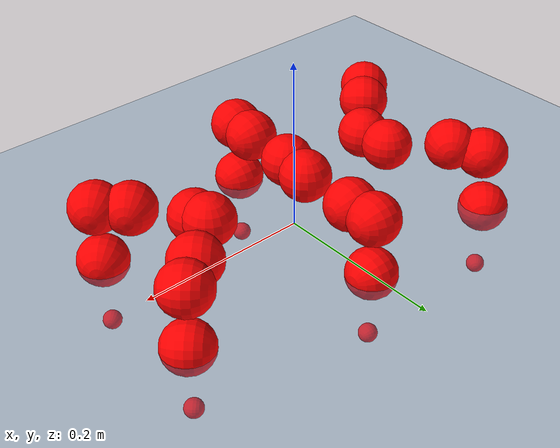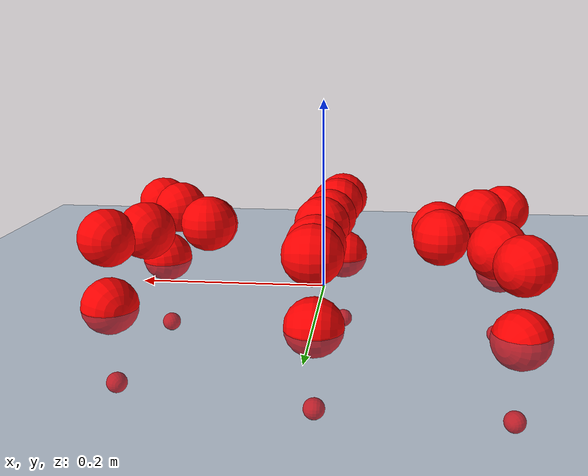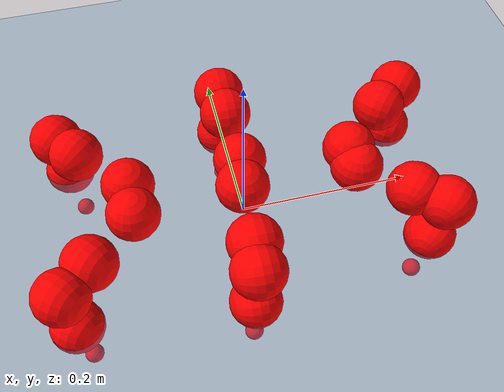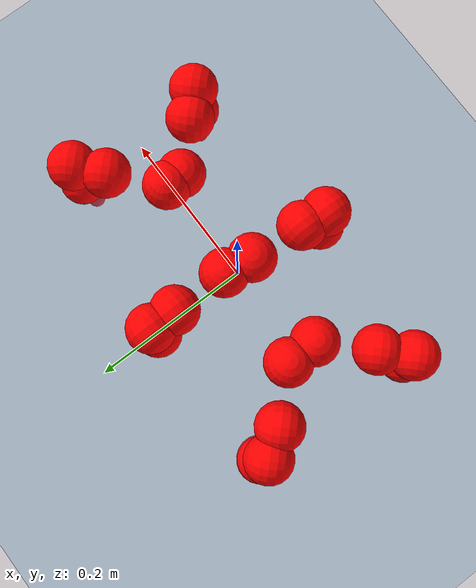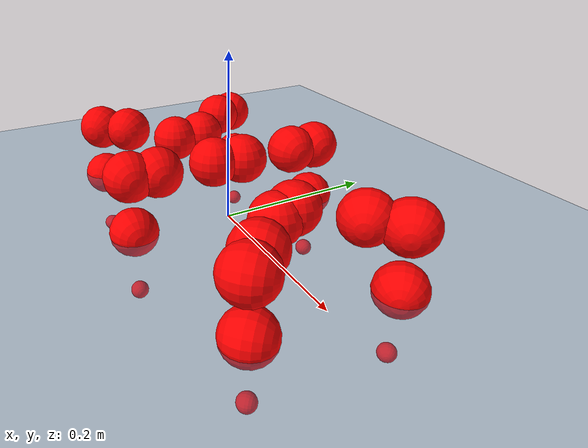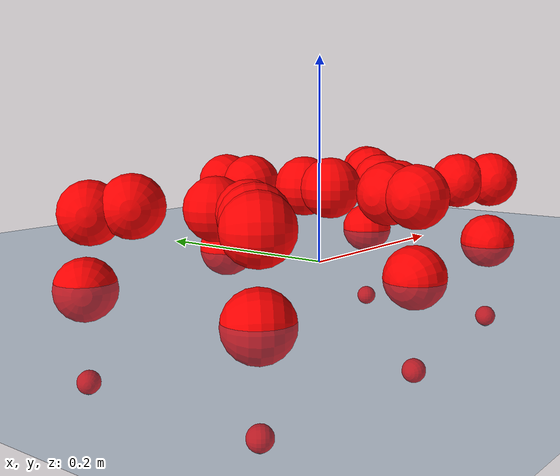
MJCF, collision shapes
<mujoco model="Golem">
  <compiler angle="radian" assetdir="assets" balanceinertia="true" inertiafromgeom="false"/>

  <option timestep="0.005" density="1.2" viscosity="2e-05"/>

  <size nkey="1"/>

  <visual>
    <quality shadowsize="8192"/>
    <map shadowclip="0.5"/>
  </visual>

  <default>
    <default class="/">
      <joint armature="0.01" damping="0.01" frictionloss="0.01"/>
      <geom contype="0" conaffinity="0" group="1" solref="-1000 -80"/>
      <site size="0.01 0.005 0.005" group="5"/>
      <general forcelimited="true" biastype="affine" gainprm="25" biasprm="0 -25 -0.5"/>
      <default class="visual">
        <geom type="mesh" group="2"/>
      </default>
      <default class="collision">
        <geom group="3"/>
      </default>
      <default class="foot">
        <geom size="0.01 0 0" condim="6" group="4" priority="1" solimp="0.015 1 0.01"/>
      </default>
      <default class="reward_collision_sphere">
        <geom group="5" rgba="1 0 0 1"/>
      </default>
    </default>
  </default>

  <asset>
    <texture type="skybox" colorspace="auto" name="//unnamed_texture_0" builtin="gradient" rgb1="0.95 0.95 0.95" rgb2="0.95 0.95 0.95" width="100" height="600"/>
    <texture type="2d" colorspace="auto" name="texplane" builtin="checker" rgb1="0.345 0.575 0.748" rgb2="0.345 0.575 0.748" markrgb="1 1 1" width="512" height="512"/>
    <material name="MatPlane" class="/" texture="texplane" texuniform="true" texrepeat="2 2" specular="0.9"/>
    <mesh name="body" class="/" file="body.stl" scale="0.001 0.001 0.001"/>
    <mesh name="coxa" class="/" file="coxa.stl" scale="0.001 0.001 0.001"/>
    <mesh name="femur" class="/" file="femur.stl" scale="0.001 0.001 0.001"/>
    <mesh name="tibia" class="/" file="tibia.stl" scale="0.001 0.001 0.001"/>
    <mesh name="tarsus" class="/" file="tarsus.stl" scale="0.001 0.001 0.001"/>
  </asset>

  <worldbody>
    <geom name="floor" class="/" size="100 100 0.125" type="plane" group="0" material="MatPlane"/>
    <light name="toplight_shadow" class="/" pos="0 0 5" dir="0.0990148 0.0990148 -0.990148" type="directional" ambient="0.04 0.04 0.04" diffuse="0.55 0.55 0.55" specular="0.12 0.12 0.12"/>
    <light name="toplight_fill" class="/" pos="0 0 5" dir="0.0990148 0.0990148 -0.990148" type="directional" castshadow="false" ambient="0.04 0.04 0.04" diffuse="0.3 0.3 0.3" specular="0.08 0.08 0.08"/>
    <body name="trunk" pos="-0.000641682 0.000573732 0.00263501" quat="0.999998 -0.00168083 0.0011606 8.3818e-05">
      <inertial pos="0.00310886 -0.000741004 -0.0034684" quat="0.999998 -0.00024107 0.00217954 -0.00034717" mass="1.37392" diaginertia="0.00319268 5.26254e-05 0.012687"/>
      <joint name="//unnamed_joint_0" type="free"/>
      <geom name="//unnamed_geom_1" class="/" pos="0 0 0.0665328" quat="1 0 0 0" type="mesh" rgba="0.9 0.9 0.9 1" mesh="body"/>
      <site name="imu" class="/" pos="0.0860599 -0.00483069 0.0995649" size="0.0072597"/>
      <camera name="track" class="/" pos="0 -0.698633 0" quat="0.707107 0.707107 0 0" mode="trackcom"/>
      <camera name="ego_camera" class="/" pos="0.102572 0 0.103957" quat="-0.5 -0.5 0.5 0.5"/>
      <body name="coxa_RR" pos="-0.138345 -0.0342739 0.0602675" quat="0.382216 -0.000556163 -0.00182801 -0.924071">
        <inertial pos="-0.00048215 0.000272608 -0.000865627" quat="0.999998 0.00139897 0.000628599 0.000999822" mass="0.0730493" diaginertia="0.00303676 5.09691e-05 0.0119833"/>
        <joint name="coxa_joint_RR" class="/" pos="0 0 0" axis="-0.00878378 0.00887659 -0.999922" stiffness="0.00435937" range="-3.12068 3.19124" armature="0.00725951" damping="0" frictionloss="0.00757542"/>
        <geom name="//unnamed_geom_2" class="/" type="mesh" rgba="0.2 0.2 0.2 1" mesh="coxa"/>
        <geom name="//unnamed_geom_3" class="reward_collision_sphere" size="0.0290388" pos="-0.0236705 0 0"/>
        <body name="femur_RR" pos="0.0462197 0.000232516 0.00409813" quat="0.500265 -0.500667 0.499451 0.499616">
          <inertial pos="-0.00121592 0.000354541 -0.00258817" quat="0.999987 0.00338163 0.000938659 -0.00364614" mass="0.0762568" diaginertia="0.00309566 5.24154e-05 0.0116447"/>
          <joint name="femur_joint_RR" class="/" pos="0 0 0" axis="-0.00400747 -0.00719643 -0.999966" range="-3.19036 3.14265" armature="0.00805105" damping="0.00317165" frictionloss="0.00632522"/>
          <geom name="//unnamed_geom_4" class="/" type="mesh" rgba="0.9 0.9 0.9 1" mesh="femur"/>
          <geom name="//unnamed_geom_5" class="reward_collision_sphere" size="0.0290388"/>
          <body name="tibia_RR" pos="0.00171732 -0.0416784 -0.000562521" quat="-0.00013342 1 -0.00011055 -2.37975e-05">
            <inertial pos="-0.00110197 0.00109304 0.00162598" quat="0.999984 0.0029437 -0.00444844 -0.00195386" mass="0.0751279" diaginertia="0.00295193 5.23175e-05 0.012344"/>
            <joint name="tibia_joint_RR" class="/" pos="0 0 0" axis="-0.0139502 -0.00289773 0.999898" stiffness="0.0065591" range="-3.19786 3.14534" armature="0.00766291" damping="0.0137099" frictionloss="0.00644167"/>
            <geom name="//unnamed_geom_6" class="/" type="mesh" rgba="0.2 0.2 0.2 1" mesh="tibia"/>
            <geom name="//unnamed_geom_7" class="reward_collision_sphere" size="0.0290388"/>
            <body name="tarsus_RR" pos="0.0710459 0.000834295 0.000493209" quat="0.999999 0.000428917 0.000678285 0.00090178">
              <inertial pos="0.04929 -0.00068332 0.00250833" quat="0.49918 0.500201 0.500563 0.500055" mass="0.0756893" diaginertia="0.00316429 5.21949e-05 0.0124364"/>
              <joint name="tarsus_joint_RR" class="/" pos="0 0 0" axis="-0.00722485 0.00128525 0.999973" range="-3.17446 3.09541" armature="0.00626862" damping="0.0112484" frictionloss="0.00814605"/>
              <geom name="//unnamed_geom_8" class="/" type="mesh" rgba="0.9 0.9 0.9 1" mesh="tarsus"/>
              <geom name="foot_1" class="foot" size="0.00778749" pos="0.0883699 0 0" quat="0 -0.707107 0 0.707107"/>
              <geom name="//unnamed_geom_10" class="reward_collision_sphere" size="0.0290388"/>
              <geom name="//unnamed_geom_11" class="reward_collision_sphere" size="0.0108895" pos="0.0848193 0 0"/>
              <site name="foot_1" class="foot" pos="0.0883699 0 0" quat="0 -0.707107 0 0.707107" size="0.0072597"/>
            </body>
          </body>
        </body>
      </body>
      <body name="coxa_RM" pos="-0.00423749 -0.0412825 0.0719099" quat="0.70782 -0.000706477 8.33316e-06 -0.706392">
        <inertial pos="0.00180727 0.0019692 0.0022773" quat="0.999984 -0.00269155 0.00390288 -0.00312104" mass="0.0757976" diaginertia="0.00307052 5.0065e-05 0.0117838"/>
        <joint name="coxa_joint_RM" class="/" pos="0 0 0" axis="0.00893877 -0.00487279 -0.999948" range="-3.12794 3.11252" armature="0.0059878" damping="0.0238474" frictionloss="0.00732376"/>
        <geom name="//unnamed_geom_12" class="/" type="mesh" rgba="0.2 0.2 0.2 1" mesh="coxa"/>
        <geom name="//unnamed_geom_13" class="reward_collision_sphere" size="0.0290388" pos="-0.0236705 0 0"/>
        <body name="femur_RM" pos="0.0438594 -0.00451616 -0.000661322" quat="0.499795 -0.500006 0.500034 0.500164">
          <inertial pos="0.000531187 0.00196909 0.00112501" quat="0.999913 -0.00699852 -0.0105049 0.00372596" mass="0.0779067" diaginertia="0.00316399 5.03714e-05 0.0117668"/>
          <joint name="femur_joint_RM" class="/" pos="0 0 0" axis="0.0121484 -3.33786e-05 -0.999926" range="-3.17115 3.14026" armature="0.00685092" damping="0.00934494" frictionloss="0.00732411"/>
          <geom name="//unnamed_geom_14" class="/" type="mesh" rgba="0.9 0.9 0.9 1" mesh="femur"/>
          <geom name="//unnamed_geom_15" class="reward_collision_sphere" size="0.0290388"/>
          <body name="tibia_RM" pos="0.00061221 -0.0320046 -0.00399216" quat="0.000904224 0.999999 -0.000377472 -0.000299039">
            <inertial pos="0.00229229 -0.00301749 0.00212453" quat="0.999967 -0.00802681 0.000571165 -0.00135002" mass="0.0757159" diaginertia="0.00295723 5.22949e-05 0.0118974"/>
            <joint name="tibia_joint_RM" class="/" pos="0 0 0" axis="-0.00281333 0.000508784 0.999996" stiffness="0.00199428" range="-3.09069 3.09827" armature="0.00646301" damping="0.0143981" frictionloss="0.0059219"/>
            <geom name="//unnamed_geom_16" class="/" type="mesh" rgba="0.2 0.2 0.2 1" mesh="tibia"/>
            <geom name="//unnamed_geom_17" class="reward_collision_sphere" size="0.0290388"/>
            <body name="tarsus_RM" pos="0.0717373 -0.000269288 0.000984747" quat="1 0.0002169 -0.000184652 0.000234648">
              <inertial pos="0.0478289 -0.001687 -0.000909773" quat="0.499724 0.499723 0.500367 0.500187" mass="0.0790871" diaginertia="0.00312775 5.34598e-05 0.0121141"/>
              <joint name="tarsus_joint_RM" class="/" pos="0 0 0" axis="-0.000658094 -0.000970176 0.999999" range="-3.19875 3.17044" armature="0.00570166" damping="0.00264798" frictionloss="0.00743641"/>
              <geom name="//unnamed_geom_18" class="/" type="mesh" rgba="0.9 0.9 0.9 1" mesh="tarsus"/>
              <geom name="foot_2" class="foot" size="0.00654493" pos="0.0883699 0 0" quat="0 -0.707107 0 0.707107"/>
              <geom name="//unnamed_geom_20" class="reward_collision_sphere" size="0.0290388"/>
              <geom name="//unnamed_geom_21" class="reward_collision_sphere" size="0.0108895" pos="0.0848193 0 0"/>
              <site name="foot_2" class="foot" pos="0.0883699 0 0" quat="0 -0.707107 0 0.707107" size="0.0072597"/>
            </body>
          </body>
        </body>
      </body>
      <body name="coxa_RF" pos="0.142218 -0.0300518 0.0618177" quat="0.923877 -4.82565e-05 9.47935e-05 -0.382689">
        <inertial pos="0.000501835 0.00429362 0.000778249" quat="1 0.000727134 0.000379816 -0.000346143" mass="0.0732977" diaginertia="0.00302428 5.31249e-05 0.0120451"/>
        <joint name="coxa_joint_RF" class="/" pos="0 0 0" axis="0.000109764 -0.00115232 -0.999999" range="-3.17998 3.08585" armature="0.00701102" damping="0.0281281" frictionloss="0.00656414"/>
        <geom name="//unnamed_geom_22" class="/" type="mesh" rgba="0.2 0.2 0.2 1" mesh="coxa"/>
        <geom name="//unnamed_geom_23" class="reward_collision_sphere" size="0.0290388" pos="-0.0236705 0 0"/>
        <body name="femur_RF" pos="0.0423587 -0.000837339 0.00625929" quat="0.500499 -0.499558 0.499302 0.50064">
          <inertial pos="0.0013771 0.000325112 -0.00256761" quat="0.999888 -0.00336098 0.0141164 -0.00369652" mass="0.074775" diaginertia="0.0030671 5.45896e-05 0.0118745"/>
          <joint name="femur_joint_RF" class="/" pos="0 0 0" axis="0.00100455 -0.0117526 -0.99993" stiffness="0.00684104" range="-3.13873 3.13687" armature="0.00802506" damping="0" frictionloss="0.00814372"/>
          <geom name="//unnamed_geom_24" class="/" type="mesh" rgba="0.9 0.9 0.9 1" mesh="femur"/>
          <geom name="//unnamed_geom_25" class="reward_collision_sphere" size="0.0290388"/>
          <body name="tibia_RF" pos="-0.000378289 -0.0365279 0.00137476" quat="-4.82417e-06 1 0.000160327 -1.78388e-05">
            <inertial pos="0.000378014 0.00125819 -0.00221491" quat="1 -4.86422e-05 0.000450189 0.00075073" mass="0.0760041" diaginertia="0.00303408 5.01432e-05 0.0113684"/>
            <joint name="tibia_joint_RF" class="/" pos="0 0 0" axis="0.00681524 -0.00677551 0.999954" range="-3.19197 3.15425" armature="0.00634525" damping="0.0142843" frictionloss="0.00719519"/>
            <geom name="//unnamed_geom_26" class="/" type="mesh" rgba="0.2 0.2 0.2 1" mesh="tibia"/>
            <geom name="//unnamed_geom_27" class="reward_collision_sphere" size="0.0290388"/>
            <body name="tarsus_RF" pos="0.0679025 -0.000790991 -0.00110496" quat="0.999999 0.000668852 -0.000270891 -0.00093669">
              <inertial pos="0.0501409 -0.000515686 -0.00390945" quat="0.499043 0.499089 0.500166 0.501698" mass="0.0780798" diaginertia="0.00306532 5.23515e-05 0.0126724"/>
              <joint name="tarsus_joint_RF" class="/" pos="0 0 0" axis="-0.011963 0.00950236 0.999883" range="-3.20033 3.19157" armature="0.00717935" damping="0.0131636" frictionloss="0.00733182"/>
              <geom name="//unnamed_geom_28" class="/" type="mesh" rgba="0.9 0.9 0.9 1" mesh="tarsus"/>
              <geom name="foot_3" class="foot" size="0.00793587" pos="0.0883699 0 0" quat="0 -0.707107 0 0.707107"/>
              <geom name="//unnamed_geom_30" class="reward_collision_sphere" size="0.0290388"/>
              <geom name="//unnamed_geom_31" class="reward_collision_sphere" size="0.0108895" pos="0.0848193 0 0"/>
              <site name="foot_3" class="foot" pos="0.0883699 0 0" quat="0 -0.707107 0 0.707107" size="0.0072597"/>
            </body>
          </body>
        </body>
      </body>
      <body name="coxa_LR" pos="-0.138903 0.0369955 0.0609357" quat="0.382887 0.000451795 -0.00117193 0.923794">
        <inertial pos="-0.00213255 -0.000920747 -0.000578929" quat="0.999993 -0.00277214 0.00103065 -0.00208087" mass="0.0774368" diaginertia="0.00318944 5.24098e-05 0.0122367"/>
        <joint name="coxa_joint_LR" class="/" pos="0 0 0" axis="0.00184126 -0.0152317 -0.999882" range="-3.19103 3.16633" armature="0.00638131" damping="0.0299702" frictionloss="0.00747948"/>
        <geom name="//unnamed_geom_32" class="/" type="mesh" rgba="0.2 0.2 0.2 1" mesh="coxa"/>
        <geom name="//unnamed_geom_33" class="reward_collision_sphere" size="0.0290388" pos="-0.0236705 0 0"/>
        <body name="femur_LR" pos="0.0478666 -0.00073179 0.00312725" quat="0.499191 -0.500006 0.500052 0.50075">
          <inertial pos="0.00254928 -0.00199534 0.000314273" quat="0.999996 -0.000411998 0.000825945 0.00262715" mass="0.073155" diaginertia="0.00301428 5.1299e-05 0.012205"/>
          <joint name="femur_joint_LR" class="/" pos="0 0 0" axis="-0.00051007 0.00042432 1" stiffness="0.00917641" range="-3.10661 3.0551" armature="0.00688528" damping="0.0163635" frictionloss="0.00590947"/>
          <geom name="//unnamed_geom_34" class="/" type="mesh" rgba="0.9 0.9 0.9 1" mesh="femur"/>
          <geom name="//unnamed_geom_35" class="reward_collision_sphere" size="0.0290388"/>
          <body name="tibia_LR" pos="0.00583683 -0.0366552 -0.0072829" quat="-0.000374995 0.999999 0.000122298 -0.00106979">
            <inertial pos="0.00290706 -0.00349353 0.00372198" quat="0.999913 0.00464369 -0.0102596 -0.00690291" mass="0.0729184" diaginertia="0.00296672 5.03354e-05 0.0117304"/>
            <joint name="tibia_joint_LR" class="/" pos="0 0 0" axis="-0.00167449 -0.00877281 -0.99996" range="-3.08756 3.17821" armature="0.00834837" damping="0" frictionloss="0.00675174"/>
            <geom name="//unnamed_geom_36" class="/" type="mesh" rgba="0.2 0.2 0.2 1" mesh="tibia"/>
            <geom name="//unnamed_geom_37" class="reward_collision_sphere" size="0.0290388"/>
            <body name="tarsus_LR" pos="0.0689544 0.00691987 0.00649415" quat="0.999999 -0.00114015 0.000301245 0.000243988">
              <inertial pos="0.0486232 -0.000980588 -0.00164567" quat="0.499702 0.499644 0.500417 0.500237" mass="0.0781551" diaginertia="0.00313866 5.21614e-05 0.0124832"/>
              <joint name="tarsus_joint_LR" class="/" pos="0 0 0" axis="0.00802247 0.0101962 -0.999916" range="-3.19195 3.14733" armature="0.00726858" damping="0.0288963" frictionloss="0.00803465"/>
              <geom name="//unnamed_geom_38" class="/" type="mesh" rgba="0.9 0.9 0.9 1" mesh="tarsus"/>
              <geom name="foot_4" class="foot" size="0.00778387" pos="0.0883699 0 0" quat="0.707107 0 -0.707107 0"/>
              <geom name="//unnamed_geom_40" class="reward_collision_sphere" size="0.0290388"/>
              <geom name="//unnamed_geom_41" class="reward_collision_sphere" size="0.0108895" pos="0.0848193 0 0"/>
              <site name="foot_4" class="foot" pos="0.0883699 0 0" quat="0.707107 0 -0.707107 0" size="0.0072597"/>
            </body>
          </body>
        </body>
      </body>
      <body name="coxa_LM" pos="0.000918356 0.0413043 0.0712312" quat="0.707219 -0.00210134 -0.000247625 0.706992">
        <inertial pos="-0.00210561 0.000225409 0.000817447" quat="0.999965 0.00298134 0.00566306 0.00534909" mass="0.0702118" diaginertia="0.0027638 4.91691e-05 0.0117681"/>
        <joint name="coxa_joint_LM" class="/" pos="0 0 0" axis="0.00186912 -4.06715e-05 -0.999998" range="-3.11553 3.08932" armature="0.00722356" damping="0.0155914" frictionloss="0.00694964"/>
        <geom name="//unnamed_geom_42" class="/" type="mesh" rgba="0.2 0.2 0.2 1" mesh="coxa"/>
        <geom name="//unnamed_geom_43" class="reward_collision_sphere" size="0.0290388" pos="-0.0236705 0 0"/>
        <body name="femur_LM" pos="0.0456942 0.000436844 -0.00124183" quat="0.499941 -0.500008 0.500031 0.50002">
          <inertial pos="0.000901458 0.000225868 0.000902471" quat="0.99999 -0.000732748 -2.98755e-05 -0.00439767" mass="0.0799975" diaginertia="0.00308338 5.41274e-05 0.0126871"/>
          <joint name="femur_joint_LM" class="/" pos="0 0 0" axis="0.00556448 -0.00726291 0.999958" stiffness="0.0101881" range="-3.08714 3.11264" armature="0.00665368" damping="0.00619768" frictionloss="0.00746461"/>
          <geom name="//unnamed_geom_44" class="/" type="mesh" rgba="0.9 0.9 0.9 1" mesh="femur"/>
          <geom name="//unnamed_geom_45" class="reward_collision_sphere" size="0.0290388"/>
          <body name="tibia_LM" pos="0.000134636 -0.033727 0.000207818" quat="0.000446834 1 3.6049e-05 -0.000888995">
            <inertial pos="0.00316365 -0.00435893 0.00151025" quat="1 0.000205036 -0.000172746 0.000405486" mass="0.0781018" diaginertia="0.00320206 5.34598e-05 0.0127435"/>
            <joint name="tibia_joint_LM" class="/" pos="0 0 0" axis="-0.0035838 0.000621614 -0.999993" stiffness="0.0119152" range="-3.14623 3.1322" armature="0.00755294" damping="0.00506213" frictionloss="0.00684514"/>
            <geom name="//unnamed_geom_46" class="/" type="mesh" rgba="0.2 0.2 0.2 1" mesh="tibia"/>
            <geom name="//unnamed_geom_47" class="reward_collision_sphere" size="0.0290388"/>
            <body name="tarsus_LM" pos="0.0706764 -9.55946e-05 -0.00123748" quat="1 -0.000119863 -0.000408355 0.00012643">
              <inertial pos="0.0455615 -0.00169092 0.00016479" quat="0.500643 0.502649 0.503687 0.492951" mass="0.0781415" diaginertia="0.00320211 5.33292e-05 0.0123145"/>
              <joint name="tarsus_joint_LM" class="/" pos="0 0 0" axis="-0.00355111 -0.00344337 -0.999988" range="-3.08782 3.14275" armature="0.00713326" damping="0" frictionloss="0.00766465"/>
              <geom name="//unnamed_geom_48" class="/" type="mesh" rgba="0.9 0.9 0.9 1" mesh="tarsus"/>
              <geom name="foot_5" class="foot" size="0.00791909" pos="0.0883699 0 0" quat="0.707107 0 -0.707107 0"/>
              <geom name="//unnamed_geom_50" class="reward_collision_sphere" size="0.0290388"/>
              <geom name="//unnamed_geom_51" class="reward_collision_sphere" size="0.0108895" pos="0.0848193 0 0"/>
              <site name="foot_5" class="foot" pos="0.0883699 0 0" quat="0.707107 0 -0.707107 0" size="0.0072597"/>
            </body>
          </body>
        </body>
      </body>
      <body name="coxa_LF" pos="0.139786 0.0250514 0.0673791" quat="0.923806 0.000118371 0.00075918 0.38286">
        <inertial pos="-0.00224347 0.000189963 -0.00141904" quat="0.999913 0.00525271 -0.0118402 -0.00247393" mass="0.0768408" diaginertia="0.00307583 5.34868e-05 0.0123315"/>
        <joint name="coxa_joint_LF" class="/" pos="0 0 0" axis="-0.00349286 -0.00596526 -0.999976" range="-3.14209 3.09034" armature="0.0070833" damping="0.00728022" frictionloss="0.00779085"/>
        <geom name="//unnamed_geom_52" class="/" type="mesh" rgba="0.2 0.2 0.2 1" mesh="coxa"/>
        <geom name="//unnamed_geom_53" class="reward_collision_sphere" size="0.0290388" pos="-0.0236705 0 0"/>
        <body name="femur_LF" pos="0.0471577 -0.00324348 0.00406566" quat="0.499933 -0.50023 0.500058 0.499779">
          <inertial pos="0.000812153 0.000975986 -0.0022324" quat="0.999812 -0.00365825 -0.00596138 -0.0181083" mass="0.0770917" diaginertia="0.00299094 5.41946e-05 0.0121506"/>
          <joint name="femur_joint_LF" class="/" pos="0 0 0" axis="-0.00557439 -0.00293136 0.99998" range="-3.13135 3.10209" armature="0.00680448" damping="0" frictionloss="0.00880208"/>
          <geom name="//unnamed_geom_54" class="/" type="mesh" rgba="0.9 0.9 0.9 1" mesh="femur"/>
          <geom name="//unnamed_geom_55" class="reward_collision_sphere" size="0.0290388"/>
          <body name="tibia_LF" pos="0.00102896 -0.0404541 -0.0038263" quat="-0.000148884 1 0.000251248 -0.000191049">
            <inertial pos="0.00180496 -0.000824245 0.000486127" quat="0.999969 0.0075427 0.00189981 0.000951213" mass="0.0771404" diaginertia="0.00296518 5.11315e-05 0.0119611"/>
            <joint name="tibia_joint_LF" class="/" pos="0 0 0" axis="-0.00489445 -0.00452469 -0.999978" range="-3.06796 3.15244" armature="0.00781457" damping="0" frictionloss="0.00715383"/>
            <geom name="//unnamed_geom_56" class="/" type="mesh" rgba="0.2 0.2 0.2 1" mesh="tibia"/>
            <geom name="//unnamed_geom_57" class="reward_collision_sphere" size="0.0290388"/>
            <body name="tarsus_LF" pos="0.0711943 0.00248684 0.00175362" quat="1 7.8528e-07 -4.12165e-06 -3.68674e-06">
              <inertial pos="0.0460848 -0.000328991 -0.00337985" quat="0.49849 0.502625 0.498441 0.500433" mass="0.0720386" diaginertia="0.00306653 5.03851e-05 0.0120323"/>
              <joint name="tarsus_joint_LF" class="/" pos="0 0 0" axis="0.00168214 -0.00190583 -0.999997" stiffness="0.0280866" range="-3.14662 3.15777" armature="0.00722549" damping="0.0369326" frictionloss="0.00797541"/>
              <geom name="//unnamed_geom_58" class="/" type="mesh" rgba="0.9 0.9 0.9 1" mesh="tarsus"/>
              <geom name="foot_6" class="foot" size="0.00744029" pos="0.0883699 0 0" quat="0.707107 0 -0.707107 0"/>
              <geom name="//unnamed_geom_60" class="reward_collision_sphere" size="0.0290388"/>
              <geom name="//unnamed_geom_61" class="reward_collision_sphere" size="0.0108895" pos="0.0848193 0 0"/>
              <site name="foot_6" class="foot" pos="0.0883699 0 0" quat="0.707107 0 -0.707107 0" size="0.0072597"/>
            </body>
          </body>
        </body>
      </body>
    </body>
  </worldbody>

  <contact>
    <pair class="/" geom1="floor" geom2="foot_1" name="//unnamed_contact_0"/>
    <pair class="/" geom1="floor" geom2="foot_2" name="//unnamed_contact_1"/>
    <pair class="/" geom1="floor" geom2="foot_3" name="//unnamed_contact_2"/>
    <pair class="/" geom1="floor" geom2="foot_4" name="//unnamed_contact_3"/>
    <pair class="/" geom1="floor" geom2="foot_5" name="//unnamed_contact_4"/>
    <pair class="/" geom1="floor" geom2="foot_6" name="//unnamed_contact_5"/>
  </contact>

  <actuator>
    <general name="coxa_joint_RR" class="/" joint="coxa_joint_RR" forcerange="-5.26145 5.26145" gainprm="19.7604" biasprm="0 -19.7604 -0.395901"/>
    <general name="femur_joint_RR" class="/" joint="femur_joint_RR" forcerange="-5.70688 5.70688" gainprm="19.7604" biasprm="0 -19.7604 -0.395901"/>
    <general name="tibia_joint_RR" class="/" joint="tibia_joint_RR" forcerange="-4.77637 4.77637" gainprm="19.7604" biasprm="0 -19.7604 -0.395901"/>
    <general name="tarsus_joint_RR" class="/" joint="tarsus_joint_RR" forcerange="-5.7925 5.7925" gainprm="19.7604" biasprm="0 -19.7604 -0.395901"/>
    <general name="coxa_joint_RM" class="/" joint="coxa_joint_RM" forcerange="-5.23557 5.23557" gainprm="19.7604" biasprm="0 -19.7604 -0.395901"/>
    <general name="femur_joint_RM" class="/" joint="femur_joint_RM" forcerange="-5.03397 5.03397" gainprm="19.7604" biasprm="0 -19.7604 -0.395901"/>
    <general name="tibia_joint_RM" class="/" joint="tibia_joint_RM" forcerange="-4.91515 4.91515" gainprm="19.7604" biasprm="0 -19.7604 -0.395901"/>
    <general name="tarsus_joint_RM" class="/" joint="tarsus_joint_RM" forcerange="-4.58078 4.58078" gainprm="19.7604" biasprm="0 -19.7604 -0.395901"/>
    <general name="coxa_joint_RF" class="/" joint="coxa_joint_RF" forcerange="-4.83233 4.83233" gainprm="19.7604" biasprm="0 -19.7604 -0.395901"/>
    <general name="femur_joint_RF" class="/" joint="femur_joint_RF" forcerange="-5.77914 5.77914" gainprm="19.7604" biasprm="0 -19.7604 -0.395901"/>
    <general name="tibia_joint_RF" class="/" joint="tibia_joint_RF" forcerange="-4.87539 4.87539" gainprm="19.7604" biasprm="0 -19.7604 -0.395901"/>
    <general name="tarsus_joint_RF" class="/" joint="tarsus_joint_RF" forcerange="-5.42107 5.42107" gainprm="19.7604" biasprm="0 -19.7604 -0.395901"/>
    <general name="coxa_joint_LR" class="/" joint="coxa_joint_LR" forcerange="-5.62568 5.62568" gainprm="19.7604" biasprm="0 -19.7604 -0.395901"/>
    <general name="femur_joint_LR" class="/" joint="femur_joint_LR" forcerange="-5.28146 5.28146" gainprm="19.7604" biasprm="0 -19.7604 -0.395901"/>
    <general name="tibia_joint_LR" class="/" joint="tibia_joint_LR" forcerange="-4.89442 4.89442" gainprm="19.7604" biasprm="0 -19.7604 -0.395901"/>
    <general name="tarsus_joint_LR" class="/" joint="tarsus_joint_LR" forcerange="-4.91983 4.91983" gainprm="19.7604" biasprm="0 -19.7604 -0.395901"/>
    <general name="coxa_joint_LM" class="/" joint="coxa_joint_LM" forcerange="-5.24568 5.24568" gainprm="19.7604" biasprm="0 -19.7604 -0.395901"/>
    <general name="femur_joint_LM" class="/" joint="femur_joint_LM" forcerange="-5.30828 5.30828" gainprm="19.7604" biasprm="0 -19.7604 -0.395901"/>
    <general name="tibia_joint_LM" class="/" joint="tibia_joint_LM" forcerange="-6.00245 6.00245" gainprm="19.7604" biasprm="0 -19.7604 -0.395901"/>
    <general name="tarsus_joint_LM" class="/" joint="tarsus_joint_LM" forcerange="-5.33654 5.33654" gainprm="19.7604" biasprm="0 -19.7604 -0.395901"/>
    <general name="coxa_joint_LF" class="/" joint="coxa_joint_LF" forcerange="-5.01602 5.01602" gainprm="19.7604" biasprm="0 -19.7604 -0.395901"/>
    <general name="femur_joint_LF" class="/" joint="femur_joint_LF" forcerange="-4.9558 4.9558" gainprm="19.7604" biasprm="0 -19.7604 -0.395901"/>
    <general name="tibia_joint_LF" class="/" joint="tibia_joint_LF" forcerange="-5.42873 5.42873" gainprm="19.7604" biasprm="0 -19.7604 -0.395901"/>
    <general name="tarsus_joint_LF" class="/" joint="tarsus_joint_LF" forcerange="-4.77495 4.77495" gainprm="19.7604" biasprm="0 -19.7604 -0.395901"/>
  </actuator>

  <sensor>
    <gyro site="imu" name="imu_angular_velocity"/>
    <velocimeter site="imu" name="imu_linear_velocity"/>
    <framelinvel objtype="site" objname="foot_1" name="foot_1_global_linear_velocity"/>
    <framelinvel objtype="site" objname="foot_2" name="foot_2_global_linear_velocity"/>
    <framelinvel objtype="site" objname="foot_3" name="foot_3_global_linear_velocity"/>
    <framelinvel objtype="site" objname="foot_4" name="foot_4_global_linear_velocity"/>
    <framelinvel objtype="site" objname="foot_5" name="foot_5_global_linear_velocity"/>
    <framelinvel objtype="site" objname="foot_6" name="foot_6_global_linear_velocity"/>
  </sensor>

  <keyframe>
    <key name="home" qpos="0 0 0.1457 1 0 0 0 0 0 0 0 0 0 0 0 0 0 0 0 0 0 0 0 0 0 0 0 0 0 0 0"/>
  </keyframe>
</mujoco>
